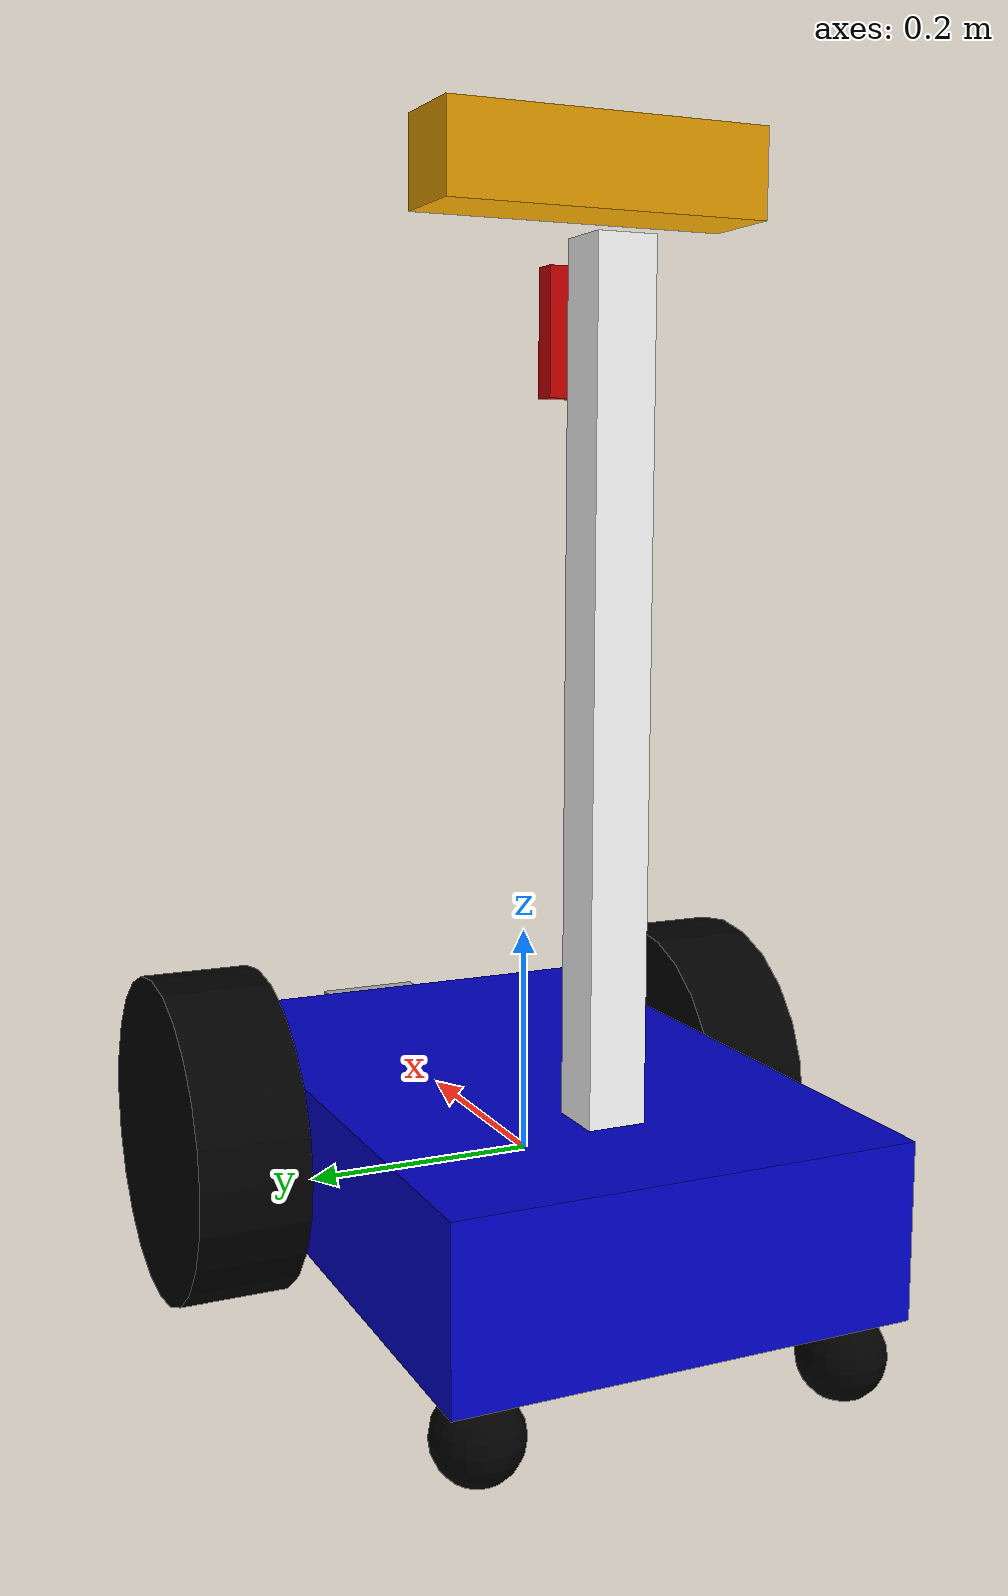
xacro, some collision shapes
<?xml version="1.0"?>
<robot name="my_robot" xmlns:xacro="http://ros.org/wiki/xacro">

  <xacro:property name="base_width" value="0.4" />
  <xacro:property name="base_length" value="0.6" />
  <xacro:property name="base_height" value="0.15" />
  <xacro:property name="polelen" value="0.7" />
  <xacro:property name="wheeldiam" value="0.3" />
  <xacro:property name="casterdiam" value="${(wheeldiam - base_height)/2}" />
  <xacro:property name="wheel_separation" value="${base_width + 0.1}" />

  <xacro:include filename="$(find my_robot)/urdf/materials.xacro" />

  <xacro:include filename="$(find my_robot)/urdf/inertials.xacro" />

  <link name="base_link">
    <visual>
      <geometry>
        <box size="${base_length} ${base_width} ${base_height}"/>
      </geometry>
      <origin xyz="0 0 0" rpy="0 0 0"/>
      <material name="blue"/>
    </visual>
    <collision>
      <geometry>
        <box size="${base_length} ${base_width} ${base_height}"/>
      </geometry>
      <origin xyz="0 0 0" rpy="0 0 0"/>
    </collision>
    <xacro:box_inertial m="15" l="${base_length}" w="${base_width}" h="${base_height}"/>
  </link>

  <xacro:macro name="wheel" params="prefix reflect">

    <link name="${prefix}_wheel">
      <visual>
        <origin xyz="0 0 0" rpy="${pi/2} 0 0" />
        <geometry>
          <cylinder radius="${wheeldiam/2}" length="0.1"/>
        </geometry>
        <material name="black"/>
      </visual>
      <collision>
        <origin xyz="0 0 0" rpy="${pi/2} 0 0" />
        <geometry>
          <cylinder radius="${wheeldiam/2}" length="0.1"/>
        </geometry>
      </collision>
      <xacro:cylinder_inertial m="0.8" r="${wheeldiam/2}" l="0.1"/>
    </link>
    <joint name="${prefix}_wheel_joint" type="continuous">
      <axis xyz="0 1 0" rpy="0 0 0" />
      <parent link="base_link"/>
      <child link="${prefix}_wheel"/>
      <origin xyz="${(base_length - wheeldiam)/2} ${reflect*(base_width/2 + 0.05)} 0" rpy="0 0 0"/>
    </joint>

    <!-- This block provides the simulator (Gazebo) with information on a few additional
    physical properties. See http://gazebosim.org/tutorials/?tut=ros_urdf for more-->
    <gazebo reference="${prefix}_wheel">
      <mu1 value="2.0"/>
      <mu2 value="1.0"/>
      <kp value="10000000.0" />
      <kd value="1.0" />
      <material>Gazebo/Black</material>
    </gazebo>

    <!-- This block connects the wheel joint to an actuator (motor), which informs both
    simulation and visualization of the robot -->

  </xacro:macro>

  <xacro:macro name="caster" params="prefix reflect">

    <link name="${prefix}_caster">
      <visual>
        <origin xyz="0 0 0" rpy="0 0 0" />
        <geometry>
          <sphere radius="${casterdiam/2}"/>
        </geometry>
        <material name="black"/>
      </visual>
      <collision>
        <origin xyz="0 0 0" rpy="0 0 0" />
        <geometry>
          <sphere radius="${casterdiam/2}"/>
        </geometry>
      </collision>
      <xacro:sphere_inertial m="0.5" r="${casterdiam/2}"/>
    </link>
    <joint name="${prefix}_caster_joint" type="continuous">
      <axis xyz="0 1 0" rpy="0 0 0" />
      <parent link="base_link"/>
      <child link="${prefix}_caster"/>
      <origin xyz="${-1*(base_length/2 - casterdiam/2)} ${reflect*(base_width/2 - casterdiam/2)} ${-((base_height+casterdiam)/2)}" rpy="0 0 0"/>
    </joint>

    <!-- This block provides the simulator (Gazebo) with information on a few additional
    physical properties. See http://gazebosim.org/tutorials/?tut=ros_urdf for more-->
    <gazebo reference="${prefix}_caster">
      <mu1 value="0.2"/>
      <mu2 value="0.1"/>
      <kp value="10000000.0" />
      <kd value="1.0" />
      <material>Gazebo/Black</material>
    </gazebo>

  </xacro:macro>

  <xacro:wheel prefix="right" reflect="-1"/>
  <xacro:wheel prefix="left" reflect="1"/>

  <xacro:caster prefix="right" reflect="-1"/>
  <xacro:caster prefix="left" reflect="1"/>

  <link name="pole">
    <visual>
      <geometry>
        <box size="0.05 0.05 ${polelen}"/>
      </geometry>
      <material name="white"/>
      <origin xyz="0 0 0"/>
    </visual>
    <collision>
      <geometry>
        <box size="0.05 0.05 ${polelen}"/>
      </geometry>
    </collision>
    <xacro:box_inertial m="1.5" l="0.05" w="0.05" h="${polelen}"/>
  </link>

  <joint name="tobase" type="fixed">
    <parent link="base_link"/>
    <child link="pole"/>
    <origin xyz="${-0.25*base_length} 0 ${(base_height+polelen)/2}"/>
  </joint>

  <link name="screen">
    <visual>
      <geometry>
        <box size="0.02 0.08 0.1"/>
      </geometry>
      <material name="red"/>
      <origin xyz="0 0 0"/>
    </visual>
    <collision>
      <geometry>
        <box size="0.02 0.08 0.1"/>
      </geometry>
    </collision>
    <xacro:box_inertial m="0.75" l="0.02" w="0.08" h="0.1"/>
  </link>

  <joint name="topole" type="fixed">
    <parent link="pole"/>
    <child link="screen"/>
    <origin xyz="0.035 0 ${0.4*polelen}"/>
  </joint>

  <!-- Hokuyo Laser -->
  <link name="hokuyo_link">
    <collision>
      <origin xyz="0 0 0" rpy="0 0 0"/>
      <geometry>
    <box size="0.1 0.1 0.1"/>
      </geometry>
    </collision>
    <visual>
      <origin xyz="0 0 0" rpy="0 0 0"/>
      <geometry>
        <mesh filename="package://my_robot/meshes/hokuyo.dae"/>
      </geometry>
    </visual>
    <inertial>
      <mass value="1e-5" />
      <origin xyz="0 0 0" rpy="0 0 0"/>
      <inertia ixx="1e-6" ixy="0" ixz="0" iyy="1e-6" iyz="0" izz="1e-6" />
    </inertial>
  </link>

  <joint name="hokuyo_joint" type="fixed">
    <parent link="base_link"/>
    <child link="hokuyo_link"/>
    <axis xyz="0 1 0" />
    <origin xyz="${0.05 + base_length/2} 0 0" rpy="0 0 0"/>
  </joint>

  <!-- Depth Camera: Kinect-->
  <link name="kinect_link">
    <collision>
      <origin xyz="0 0 0" rpy="0 0 0"/>
      <geometry>
    <box size="0.073000 0.276000 0.072000"/>
      </geometry>
    </collision>
    <visual>
      <origin xyz="0 0 0" rpy="0 0 0"/>
      <geometry>
        <mesh filename="package://my_robot/meshes/kinect.dae"/>
      </geometry>
    </visual>
    <inertial>
      <mass value="1e-5" />
      <origin xyz="0 0 0" rpy="0 0 0"/>
      <inertia ixx="1e-6" ixy="0" ixz="0" iyy="1e-6" iyz="0" izz="1e-6" />
    </inertial>
  </link>

  <joint name="kinect_joint" type="fixed">
    <parent link="pole"/>
    <child link="kinect_link"/>
    <axis xyz="0 1 0" />
    <origin xyz="0.036 0 ${0.056 + polelen/2}" rpy="0 0 0"/>
  </joint>

  <!-- Gazebo -->
  <xacro:include filename="$(find my_robot)/urdf/robot.gazebo" />

</robot>

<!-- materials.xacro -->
<robot name="my_robot" xmlns:xacro="http://ros.org/wiki/xacro">

  <material name="blue">
    <color rgba="0 0 0.8 1"/>
  </material>

  <material name="red">
    <color rgba="0.8 0 0 1"/>
  </material>

  <material name="black">
    <color rgba="0 0 0 1"/>
  </material>

  <material name="white">
    <color rgba="1 1 1 1"/>
  </material>

</robot>

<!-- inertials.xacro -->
<robot name="my_robot" xmlns:xacro="http://ros.org/wiki/xacro">

  <xacro:macro name="box_inertial" params="m l w h">
    <inertial>
      <mass value="${m}" />
      <origin xyz="0 0 0" rpy="0 0 0"/>
      <inertia ixx="${m*(l*l+h*h)/12}" ixy="0.0" ixz="0.0" iyy="${m*(h*h+w*w)/12}" iyz="0.0" izz="${m*(w*w+h*h)/12}" />
    </inertial>
  </xacro:macro>

  <xacro:macro name="cylinder_inertial" params="m r l">
    <inertial>
      <mass value="${m}" />
      <origin xyz="0 0 0" rpy="${pi/2} 0 0"/>
      <inertia ixx="${m*(3*r*r+l*l)/12}" ixy="0.0" ixz="0.0" iyy="${m*(3*r*r+l*l)/12}" iyz="0.0" izz="${0.5*m*r*r}" />
    </inertial>
  </xacro:macro>

  <xacro:macro name="sphere_inertial" params="m r">
    <inertial>
      <mass value="${m}" />
      <origin xyz="0 0 0" rpy="0 0 0"/>
      <inertia ixx="${0.4*m*r*r}" ixy="0.0" ixz="0.0" iyy="${0.4*m*r*r}" iyz="0.0" izz="${0.4*m*r*r}" />
    </inertial>
  </xacro:macro>

</robot>
